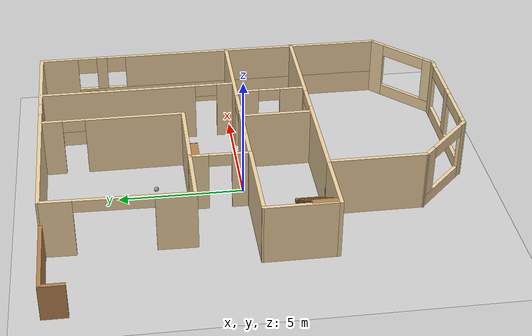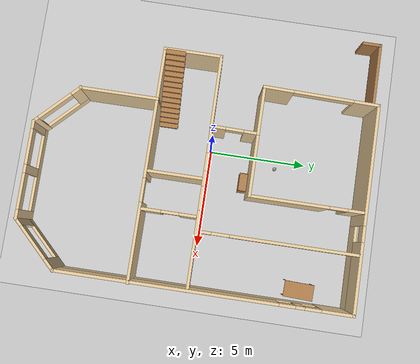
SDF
<sdf version="1.6">
 <world name="default">
  <model name="ground_plane">
   <static>1</static>
   <link name="link">
    <collision name="collision">
     <geometry><plane><normal>0 0 1</normal><size>100 100</size></plane></geometry>
     <surface>
      <contact><collide_bitmask>65535</collide_bitmask></contact>
      <friction><ode><mu>100</mu><mu2>50</mu2></ode></friction>
     </surface>
    </collision>
    <visual name="visual">
     <cast_shadows>0</cast_shadows>
     <geometry><plane><normal>0 0 1</normal><size>100 100</size></plane></geometry>
     <material>
      <script><uri>file://media/materials/scripts/gazebo.material</uri><name>Gazebo/Grey</name></script>
     </material>
    </visual>
   </link>
  </model>
  <model name="Building">
   <pose>0.288686 -0.504373 0 0 -0 0</pose>
   <link name="Stairs_2">
    <visual name="Stairs_2_Visual_0">
     <pose>-1.38684 -1.94916 0.083333 0 -0 -1.5708</pose>
     <geometry><box><size>1 0.233333 0.166667</size></box></geometry>
     <material>
      <script><uri>file://media/materials/scripts/gazebo.material</uri><name>Gazebo/Wood</name></script>
      <ambient>0.760784 0.662745 0.627451 1</ambient>
     </material>
     <meta><layer>0</layer></meta>
    </visual>
    <collision name="Stairs_2_Collision_0">
     <geometry><box><size>1 0.233333 0.166667</size></box></geometry>
     <pose>-1.38684 -1.94916 0.083333 0 -0 -1.5708</pose>
    </collision>
    <visual name="Stairs_2_Visual_1">
     <pose>-1.62017 -1.94916 0.25 0 -0 -1.5708</pose>
     <geometry><box><size>1 0.233333 0.166667</size></box></geometry>
     <material>
      <script><uri>file://media/materials/scripts/gazebo.material</uri><name>Gazebo/Wood</name></script>
      <ambient>0.760784 0.662745 0.627451 1</ambient>
     </material>
     <meta><layer>0</layer></meta>
    </visual>
    <collision name="Stairs_2_Collision_1">
     <geometry><box><size>1 0.233333 0.166667</size></box></geometry>
     <pose>-1.62017 -1.94916 0.25 0 -0 -1.5708</pose>
    </collision>
    <visual name="Stairs_2_Visual_2">
     <pose>-1.85351 -1.94916 0.416667 0 -0 -1.5708</pose>
     <geometry><box><size>1 0.233333 0.166667</size></box></geometry>
     <material>
      <script><uri>file://media/materials/scripts/gazebo.material</uri><name>Gazebo/Wood</name></script>
      <ambient>0.760784 0.662745 0.627451 1</ambient>
     </material>
     <meta><layer>0</layer></meta>
    </visual>
    <collision name="Stairs_2_Collision_2">
     <geometry><box><size>1 0.233333 0.166667</size></box></geometry>
     <pose>-1.85351 -1.94916 0.416667 0 -0 -1.5708</pose>
    </collision>
    <visual name="Stairs_2_Visual_3">
     <pose>-2.08684 -1.94916 0.583333 0 -0 -1.5708</pose>
     <geometry><box><size>1 0.233333 0.166667</size></box></geometry>
     <material>
      <script><uri>file://media/materials/scripts/gazebo.material</uri><name>Gazebo/Wood</name></script>
      <ambient>0.760784 0.662745 0.627451 1</ambient>
     </material>
     <meta><layer>0</layer></meta>
    </visual>
    <collision name="Stairs_2_Collision_3">
     <geometry><box><size>1 0.233333 0.166667</size></box></geometry>
     <pose>-2.08684 -1.94916 0.583333 0 -0 -1.5708</pose>
    </collision>
    <visual name="Stairs_2_Visual_4">
     <pose>-2.32017 -1.94916 0.75 0 -0 -1.5708</pose>
     <geometry><box><size>1 0.233333 0.166667</size></box></geometry>
     <material>
      <script><uri>file://media/materials/scripts/gazebo.material</uri><name>Gazebo/Wood</name></script>
      <ambient>0.760784 0.662745 0.627451 1</ambient>
     </material>
     <meta><layer>0</layer></meta>
    </visual>
    <collision name="Stairs_2_Collision_4">
     <geometry><box><size>1 0.233333 0.166667</size></box></geometry>
     <pose>-2.32017 -1.94916 0.75 0 -0 -1.5708</pose>
    </collision>
    <visual name="Stairs_2_Visual_5">
     <pose>-2.55351 -1.94916 0.916667 0 -0 -1.5708</pose>
     <geometry><box><size>1 0.233333 0.166667</size></box></geometry>
     <material>
      <script><uri>file://media/materials/scripts/gazebo.material</uri><name>Gazebo/Wood</name></script>
      <ambient>0.760784 0.662745 0.627451 1</ambient>
     </material>
     <meta><layer>0</layer></meta>
    </visual>
    <collision name="Stairs_2_Collision_5">
     <geometry><box><size>1 0.233333 0.166667</size></box></geometry>
     <pose>-2.55351 -1.94916 0.916667 0 -0 -1.5708</pose>
    </collision>
    <visual name="Stairs_2_Visual_6">
     <pose>-2.78684 -1.94916 1.08333 0 -0 -1.5708</pose>
     <geometry><box><size>1 0.233333 0.166667</size></box></geometry>
     <material>
      <script><uri>file://media/materials/scripts/gazebo.material</uri><name>Gazebo/Wood</name></script>
      <ambient>0.760784 0.662745 0.627451 1</ambient>
     </material>
     <meta><layer>0</layer></meta>
    </visual>
    <collision name="Stairs_2_Collision_6">
     <geometry><box><size>1 0.233333 0.166667</size></box></geometry>
     <pose>-2.78684 -1.94916 1.08333 0 -0 -1.5708</pose>
    </collision>
    <visual name="Stairs_2_Visual_7">
     <pose>-3.02017 -1.94916 1.25 0 -0 -1.5708</pose>
     <geometry><box><size>1 0.233333 0.166667</size></box></geometry>
     <material>
      <script><uri>file://media/materials/scripts/gazebo.material</uri><name>Gazebo/Wood</name></script>
      <ambient>0.760784 0.662745 0.627451 1</ambient>
     </material>
     <meta><layer>0</layer></meta>
    </visual>
    <collision name="Stairs_2_Collision_7">
     <geometry><box><size>1 0.233333 0.166667</size></box></geometry>
     <pose>-3.02017 -1.94916 1.25 0 -0 -1.5708</pose>
    </collision>
    <visual name="Stairs_2_Visual_8">
     <pose>-3.25351 -1.94916 1.41667 0 -0 -1.5708</pose>
     <geometry><box><size>1 0.233333 0.166667</size></box></geometry>
     <material>
      <script><uri>file://media/materials/scripts/gazebo.material</uri><name>Gazebo/Wood</name></script>
      <ambient>0.760784 0.662745 0.627451 1</ambient>
     </material>
     <meta><layer>0</layer></meta>
    </visual>
    <collision name="Stairs_2_Collision_8">
     <geometry><box><size>1 0.233333 0.166667</size></box></geometry>
     <pose>-3.25351 -1.94916 1.41667 0 -0 -1.5708</pose>
    </collision>
    <visual name="Stairs_2_Visual_9">
     <pose>-3.48684 -1.94916 1.58333 0 -0 -1.5708</pose>
     <geometry><box><size>1 0.233333 0.166667</size></box></geometry>
     <material>
      <script><uri>file://media/materials/scripts/gazebo.material</uri><name>Gazebo/Wood</name></script>
      <ambient>0.760784 0.662745 0.627451 1</ambient>
     </material>
     <meta><layer>0</layer></meta>
    </visual>
    <collision name="Stairs_2_Collision_9">
     <geometry><box><size>1 0.233333 0.166667</size></box></geometry>
     <pose>-3.48684 -1.94916 1.58333 0 -0 -1.5708</pose>
    </collision>
    <visual name="Stairs_2_Visual_10">
     <pose>-3.72017 -1.94916 1.75 0 -0 -1.5708</pose>
     <geometry><box><size>1 0.233333 0.166667</size></box></geometry>
     <material>
      <script><uri>file://media/materials/scripts/gazebo.material</uri><name>Gazebo/Wood</name></script>
      <ambient>0.760784 0.662745 0.627451 1</ambient>
     </material>
     <meta><layer>0</layer></meta>
    </visual>
    <collision name="Stairs_2_Collision_10">
     <geometry><box><size>1 0.233333 0.166667</size></box></geometry>
     <pose>-3.72017 -1.94916 1.75 0 -0 -1.5708</pose>
    </collision>
    <visual name="Stairs_2_Visual_11">
     <pose>-3.95351 -1.94916 1.91667 0 -0 -1.5708</pose>
     <geometry><box><size>1 0.233333 0.166667</size></box></geometry>
     <material>
      <script><uri>file://media/materials/scripts/gazebo.material</uri><name>Gazebo/Wood</name></script>
      <ambient>0.760784 0.662745 0.627451 1</ambient>
     </material>
     <meta><layer>0</layer></meta>
    </visual>
    <collision name="Stairs_2_Collision_11">
     <geometry><box><size>1 0.233333 0.166667</size></box></geometry>
     <pose>-3.95351 -1.94916 1.91667 0 -0 -1.5708</pose>
    </collision>
    <visual name="Stairs_2_Visual_12">
     <pose>-4.18684 -1.94916 2.08333 0 -0 -1.5708</pose>
     <geometry><box><size>1 0.233333 0.166667</size></box></geometry>
     <material>
      <script><uri>file://media/materials/scripts/gazebo.material</uri><name>Gazebo/Wood</name></script>
      <ambient>0.760784 0.662745 0.627451 1</ambient>
     </material>
     <meta><layer>0</layer></meta>
    </visual>
    <collision name="Stairs_2_Collision_12">
     <geometry><box><size>1 0.233333 0.166667</size></box></geometry>
     <pose>-4.18684 -1.94916 2.08333 0 -0 -1.5708</pose>
    </collision>
    <visual name="Stairs_2_Visual_13">
     <pose>-4.42017 -1.94916 2.25 0 -0 -1.5708</pose>
     <geometry><box><size>1 0.233333 0.166667</size></box></geometry>
     <material>
      <script><uri>file://media/materials/scripts/gazebo.material</uri><name>Gazebo/Wood</name></script>
      <ambient>0.760784 0.662745 0.627451 1</ambient>
     </material>
     <meta><layer>0</layer></meta>
    </visual>
    <collision name="Stairs_2_Collision_13">
     <geometry><box><size>1 0.233333 0.166667</size></box></geometry>
     <pose>-4.42017 -1.94916 2.25 0 -0 -1.5708</pose>
    </collision>
    <visual name="Stairs_2_Visual_14">
     <pose>-4.65351 -1.94916 2.41667 0 -0 -1.5708</pose>
     <geometry><box><size>1 0.233333 0.166667</size></box></geometry>
     <material>
      <script><uri>file://media/materials/scripts/gazebo.material</uri><name>Gazebo/Wood</name></script>
      <ambient>0.760784 0.662745 0.627451 1</ambient>
     </material>
     <meta><layer>0</layer></meta>
    </visual>
    <collision name="Stairs_2_Collision_14">
     <geometry><box><size>1 0.233333 0.166667</size></box></geometry>
     <pose>-4.65351 -1.94916 2.41667 0 -0 -1.5708</pose>
    </collision>
   </link>
   <link name="Wall_34">
    <pose>6.87523 1.11069 0 0 0 -1.5708</pose>
    <visual name="Wall_34_Visual_0">
     <pose>-6.55765 0 1.25 0 -0 0</pose>
     <geometry><box><size>1.6347 0.15 2.5</size></box></geometry>
     <material>
      <script><uri>file://media/materials/scripts/gazebo.material</uri><name>Gazebo/Grey</name></script>
      <ambient>0.921569 0.807843 0.615686 1</ambient>
     </material>
     <meta><layer>0</layer></meta>
    </visual>
    <collision name="Wall_34_Collision_0">
     <geometry><box><size>1.6347 0.15 2.5</size></box></geometry>
     <pose>-6.55765 0 1.25 0 -0 0</pose>
    </collision>
    <visual name="Wall_34_Visual_1">
     <pose>0.81735 0 0.5 0 -0 0</pose>
     <geometry><box><size>13.1153 0.15 1</size></box></geometry>
     <material>
      <script><uri>file://media/materials/scripts/gazebo.material</uri><name>Gazebo/Grey</name></script>
      <ambient>0.921569 0.807843 0.615686 1</ambient>
     </material>
     <meta><layer>0</layer></meta>
    </visual>
    <collision name="Wall_34_Collision_1">
     <geometry><box><size>13.1153 0.15 1</size></box></geometry>
     <pose>0.81735 0 0.5 0 -0 0</pose>
    </collision>
    <visual name="Wall_34_Visual_2">
     <pose>-4.71674 0 1.75 0 -0 0</pose>
     <geometry><box><size>0.447118 0.15 1.5</size></box></geometry>
     <material>
      <script><uri>file://media/materials/scripts/gazebo.material</uri><name>Gazebo/Grey</name></script>
      <ambient>0.921569 0.807843 0.615686 1</ambient>
     </material>
     <meta><layer>0</layer></meta>
    </visual>
    <collision name="Wall_34_Collision_2">
     <geometry><box><size>0.447118 0.15 1.5</size></box></geometry>
     <pose>-4.71674 0 1.75 0 -0 0</pose>
    </collision>
    <visual name="Wall_34_Visual_3">
     <pose>1.84091 0 1.75 0 -0 0</pose>
     <geometry><box><size>11.0682 0.15 1.5</size></box></geometry>
     <material>
      <script><uri>file://media/materials/scripts/gazebo.material</uri><name>Gazebo/Grey</name></script>
      <ambient>0.921569 0.807843 0.615686 1</ambient>
     </material>
     <meta><layer>0</layer></meta>
    </visual>
    <collision name="Wall_34_Collision_3">
     <geometry><box><size>11.0682 0.15 1.5</size></box></geometry>
     <pose>1.84091 0 1.75 0 -0 0</pose>
    </collision>
    <visual name="Wall_34_Visual_4">
     <pose>-5.3403 0 2.15 0 -0 0</pose>
     <geometry><box><size>0.8 0.15 0.7</size></box></geometry>
     <material>
      <script><uri>file://media/materials/scripts/gazebo.material</uri><name>Gazebo/Grey</name></script>
      <ambient>0.921569 0.807843 0.615686 1</ambient>
     </material>
     <meta><layer>0</layer></meta>
    </visual>
    <collision name="Wall_34_Collision_4">
     <geometry><box><size>0.8 0.15 0.7</size></box></geometry>
     <pose>-5.3403 0 2.15 0 -0 0</pose>
    </collision>
    <visual name="Wall_34_Visual_5">
     <pose>-4.09318 0 2.15 0 -0 0</pose>
     <geometry><box><size>0.8 0.15 0.7</size></box></geometry>
     <material>
      <script><uri>file://media/materials/scripts/gazebo.material</uri><name>Gazebo/Grey</name></script>
      <ambient>0.921569 0.807843 0.615686 1</ambient>
     </material>
     <meta><layer>0</layer></meta>
    </visual>
    <collision name="Wall_34_Collision_5">
     <geometry><box><size>0.8 0.15 0.7</size></box></geometry>
     <pose>-4.09318 0 2.15 0 -0 0</pose>
    </collision>
   </link>
   <link name="Wall_35">
    <pose>5.77921 -7.28533 0 0 0 -2.35619</pose>
    <visual name="Wall_35_Visual_0">
     <pose>-1.26324 0 1.25 0 -0 0</pose>
     <geometry><box><size>0.723512 0.15 2.5</size></box></geometry>
     <material>
      <script><uri>file://media/materials/scripts/gazebo.material</uri><name>Gazebo/Grey</name></script>
      <ambient>0.921569 0.807843 0.615686 1</ambient>
     </material>
     <meta><layer>0</layer></meta>
    </visual>
    <collision name="Wall_35_Collision_0">
     <geometry><box><size>0.723512 0.15 2.5</size></box></geometry>
     <pose>-1.26324 0 1.25 0 -0 0</pose>
    </collision>
    <visual name="Wall_35_Visual_1">
     <pose>0.361756 0 0.25 0 -0 0</pose>
     <geometry><box><size>2.52649 0.15 0.5</size></box></geometry>
     <material>
      <script><uri>file://media/materials/scripts/gazebo.material</uri><name>Gazebo/Grey</name></script>
      <ambient>0.921569 0.807843 0.615686 1</ambient>
     </material>
     <meta><layer>0</layer></meta>
    </visual>
    <collision name="Wall_35_Collision_1">
     <geometry><box><size>2.52649 0.15 0.5</size></box></geometry>
     <pose>0.361756 0 0.25 0 -0 0</pose>
    </collision>
    <visual name="Wall_35_Visual_2">
     <pose>1.36176 0 1.5 0 -0 0</pose>
     <geometry><box><size>0.526488 0.15 2</size></box></geometry>
     <material>
      <script><uri>file://media/materials/scripts/gazebo.material</uri><name>Gazebo/Grey</name></script>
      <ambient>0.921569 0.807843 0.615686 1</ambient>
     </material>
     <meta><layer>0</layer></meta>
    </visual>
    <collision name="Wall_35_Collision_2">
     <geometry><box><size>0.526488 0.15 2</size></box></geometry>
     <pose>1.36176 0 1.5 0 -0 0</pose>
    </collision>
    <visual name="Wall_35_Visual_3">
     <pose>0.098512 0 2.25 0 -0 0</pose>
     <geometry><box><size>2 0.15 0.5</size></box></geometry>
     <material>
      <script><uri>file://media/materials/scripts/gazebo.material</uri><name>Gazebo/Grey</name></script>
      <ambient>0.921569 0.807843 0.615686 1</ambient>
     </material>
     <meta><layer>0</layer></meta>
    </visual>
    <collision name="Wall_35_Collision_3">
     <geometry><box><size>2 0.15 0.5</size></box></geometry>
     <pose>0.098512 0 2.25 0 -0 0</pose>
    </collision>
   </link>
   <link name="Wall_36">
    <pose>2.2582 -8.38134 0 0 -0 3.14159</pose>
    <visual name="Wall_36_Visual_0">
     <pose>-2.23916 0 1.25 0 -0 0</pose>
     <geometry><box><size>0.521674 0.15 2.5</size></box></geometry>
     <material>
      <script><uri>file://media/materials/scripts/gazebo.material</uri><name>Gazebo/Grey</name></script>
      <ambient>0.921569 0.807843 0.615686 1</ambient>
     </material>
     <meta><layer>0</layer></meta>
    </visual>
    <collision name="Wall_36_Collision_0">
     <geometry><box><size>0.521674 0.15 2.5</size></box></geometry>
     <pose>-2.23916 0 1.25 0 -0 0</pose>
    </collision>
    <visual name="Wall_36_Visual_1">
     <pose>0.260837 0 0.25 0 -0 0</pose>
     <geometry><box><size>4.47833 0.15 0.5</size></box></geometry>
     <material>
      <script><uri>file://media/materials/scripts/gazebo.material</uri><name>Gazebo/Grey</name></script>
      <ambient>0.921569 0.807843 0.615686 1</ambient>
     </material>
     <meta><layer>0</layer></meta>
    </visual>
    <collision name="Wall_36_Collision_1">
     <geometry><box><size>4.47833 0.15 0.5</size></box></geometry>
     <pose>0.260837 0 0.25 0 -0 0</pose>
    </collision>
    <visual name="Wall_36_Visual_2">
     <pose>0.035742 0 1.5 0 -0 0</pose>
     <geometry><box><size>0.428135 0.15 2</size></box></geometry>
     <material>
      <script><uri>file://media/materials/scripts/gazebo.material</uri><name>Gazebo/Grey</name></script>
      <ambient>0.921569 0.807843 0.615686 1</ambient>
     </material>
     <meta><layer>0</layer></meta>
    </visual>
    <collision name="Wall_36_Collision_2">
     <geometry><box><size>0.428135 0.15 2</size></box></geometry>
     <pose>0.035742 0 1.5 0 -0 0</pose>
    </collision>
    <visual name="Wall_36_Visual_3">
     <pose>2.2749 0 1.5 0 -0 0</pose>
     <geometry><box><size>0.450191 0.15 2</size></box></geometry>
     <material>
      <script><uri>file://media/materials/scripts/gazebo.material</uri><name>Gazebo/Grey</name></script>
      <ambient>0.921569 0.807843 0.615686 1</ambient>
     </material>
     <meta><layer>0</layer></meta>
    </visual>
    <collision name="Wall_36_Collision_3">
     <geometry><box><size>0.450191 0.15 2</size></box></geometry>
     <pose>2.2749 0 1.5 0 -0 0</pose>
    </collision>
    <visual name="Wall_36_Visual_4">
     <pose>-1.07833 0 2.25 0 -0 0</pose>
     <geometry><box><size>1.8 0.15 0.5</size></box></geometry>
     <material>
      <script><uri>file://media/materials/scripts/gazebo.material</uri><name>Gazebo/Grey</name></script>
      <ambient>0.921569 0.807843 0.615686 1</ambient>
     </material>
     <meta><layer>0</layer></meta>
    </visual>
    <collision name="Wall_36_Collision_4">
     <geometry><box><size>1.8 0.15 0.5</size></box></geometry>
     <pose>-1.07833 0 2.25 0 -0 0</pose>
    </collision>
    <visual name="Wall_36_Visual_5">
     <pose>1.14981 0 2.25 0 -0 0</pose>
     <geometry><box><size>1.8 0.15 0.5</size></box></geometry>
     <material>
      <script><uri>file://media/materials/scripts/gazebo.material</uri><name>Gazebo/Grey</name></script>
      <ambient>0.921569 0.807843 0.615686 1</ambient>
     </material>
     <meta><layer>0</layer></meta>
    </visual>
    <collision name="Wall_36_Collision_5">
     <geometry><box><size>1.8 0.15 0.5</size></box></geometry>
     <pose>1.14981 0 2.25 0 -0 0</pose>
    </collision>
   </link>
   <link name="Wall_37">
    <pose>-1.17443 -7.37372 0 0 -0 2.35619</pose>
    <visual name="Wall_37_Visual_0">
     <pose>-1.31904 0 1.25 0 -0 0</pose>
     <geometry><box><size>0.361912 0.15 2.5</size></box></geometry>
     <material>
      <script><uri>file://media/materials/scripts/gazebo.material</uri><name>Gazebo/Grey</name></script>
      <ambient>0.921569 0.807843 0.615686 1</ambient>
     </material>
     <meta><layer>0</layer></meta>
    </visual>
    <collision name="Wall_37_Collision_0">
     <geometry><box><size>0.361912 0.15 2.5</size></box></geometry>
     <pose>-1.31904 0 1.25 0 -0 0</pose>
    </collision>
    <visual name="Wall_37_Visual_1">
     <pose>0.180956 0 0.25 0 -0 0</pose>
     <geometry><box><size>2.63809 0.15 0.5</size></box></geometry>
     <material>
      <script><uri>file://media/materials/scripts/gazebo.material</uri><name>Gazebo/Grey</name></script>
      <ambient>0.921569 0.807843 0.615686 1</ambient>
     </material>
     <meta><layer>0</layer></meta>
    </visual>
    <collision name="Wall_37_Collision_1">
     <geometry><box><size>2.63809 0.15 0.5</size></box></geometry>
     <pose>0.180956 0 0.25 0 -0 0</pose>
    </collision>
    <visual name="Wall_37_Visual_2">
     <pose>1.18096 0 1.5 0 -0 0</pose>
     <geometry><box><size>0.638088 0.15 2</size></box></geometry>
     <material>
      <script><uri>file://media/materials/scripts/gazebo.material</uri><name>Gazebo/Grey</name></script>
      <ambient>0.921569 0.807843 0.615686 1</ambient>
     </material>
     <meta><layer>0</layer></meta>
    </visual>
    <collision name="Wall_37_Collision_2">
     <geometry><box><size>0.638088 0.15 2</size></box></geometry>
     <pose>1.18096 0 1.5 0 -0 0</pose>
    </collision>
    <visual name="Wall_37_Visual_3">
     <pose>-0.138088 0 2.25 0 -0 0</pose>
     <geometry><box><size>2 0.15 0.5</size></box></geometry>
     <material>
      <script><uri>file://media/materials/scripts/gazebo.material</uri><name>Gazebo/Grey</name></script>
      <ambient>0.921569 0.807843 0.615686 1</ambient>
     </material>
     <meta><layer>0</layer></meta>
    </visual>
    <collision name="Wall_37_Collision_3">
     <geometry><box><size>2 0.15 0.5</size></box></geometry>
     <pose>-0.138088 0 2.25 0 -0 0</pose>
    </collision>
   </link>
   <link name="Wall_38">
    <collision name="Wall_38_Collision">
     <geometry><box><size>4 0.15 2.5</size></box></geometry>
     <pose>0 0 1.25 0 -0 0</pose>
    </collision>
    <visual name="Wall_38_Visual">
     <pose>0 0 1.25 0 -0 0</pose>
     <geometry><box><size>4 0.15 2.5</size></box></geometry>
     <material>
      <script><uri>file://media/materials/scripts/gazebo.material</uri><name>Gazebo/Grey</name></script>
      <ambient>0.921569 0.807843 0.615686 1</ambient>
     </material>
     <meta><layer>0</layer></meta>
    </visual>
    <pose>-2.18206 -4.44109 0 0 -0 1.5708</pose>
   </link>
   <link name="Wall_39">
    <collision name="Wall_39_Collision">
     <geometry><box><size>2.75 0.15 2.5</size></box></geometry>
     <pose>0 0 1.25 0 -0 0</pose>
    </collision>
    <visual name="Wall_39_Visual">
     <pose>0 0 1.25 0 -0 0</pose>
     <geometry><box><size>2.75 0.15 2.5</size></box></geometry>
     <material>
      <script><uri>file://media/materials/scripts/gazebo.material</uri><name>Gazebo/Grey</name></script>
      <ambient>0.921569 0.807843 0.615686 1</ambient>
     </material>
     <meta><layer>0</layer></meta>
    </visual>
    <pose>-3.48206 -2.51609 0 0 -0 3.14159</pose>
   </link>
   <link name="Wall_40">
    <collision name="Wall_40_Collision">
     <geometry><box><size>3 0.15 2.5</size></box></geometry>
     <pose>0 0 1.25 0 -0 0</pose>
    </collision>
    <visual name="Wall_40_Visual">
     <pose>0 0 1.25 0 -0 0</pose>
     <geometry><box><size>3 0.15 2.5</size></box></geometry>
     <material>
      <script><uri>file://media/materials/scripts/gazebo.material</uri><name>Gazebo/Grey</name></script>
      <ambient>0.921569 0.807843 0.615686 1</ambient>
     </material>
     <meta><layer>0</layer></meta>
    </visual>
    <pose>-4.78206 -1.09109 0 0 -0 1.5708</pose>
   </link>
   <link name="Wall_41">
    <collision name="Wall_41_Collision">
     <geometry><box><size>3.71526 0.15 2.5</size></box></geometry>
     <pose>0 0 1.25 0 -0 0</pose>
    </collision>
    <visual name="Wall_41_Visual">
     <pose>0 0 1.25 0 -0 0</pose>
     <geometry><box><size>3.71526 0.15 2.5</size></box></geometry>
     <material>
      <script><uri>file://media/materials/scripts/gazebo.material</uri><name>Gazebo/Grey</name></script>
      <ambient>0.921569 0.807843 0.615686 1</ambient>
     </material>
     <meta><layer>0</layer></meta>
    </visual>
    <pose>-2.99945 0.342607 0 0 -0 0.004878</pose>
   </link>
   <link name="Wall_42">
    <pose>-1.19945 1.51761 0 0 -0 1.55589</pose>
    <visual name="Wall_42_Visual_0">
     <pose>-0.846422 0 1.25 0 -0 0</pose>
     <geometry><box><size>0.790024 0.15 2.5</size></box></geometry>
     <material>
      <script><uri>file://media/materials/scripts/gazebo.material</uri><name>Gazebo/Grey</name></script>
      <ambient>0.921569 0.807843 0.615686 1</ambient>
     </material>
     <meta><layer>0</layer></meta>
    </visual>
    <collision name="Wall_42_Collision_0">
     <geometry><box><size>0.790024 0.15 2.5</size></box></geometry>
     <pose>-0.846422 0 1.25 0 -0 0</pose>
    </collision>
    <visual name="Wall_42_Visual_1">
     <pose>0.845012 0 1.25 0 -0 0</pose>
     <geometry><box><size>0.792844 0.15 2.5</size></box></geometry>
     <material>
      <script><uri>file://media/materials/scripts/gazebo.material</uri><name>Gazebo/Grey</name></script>
      <ambient>0.921569 0.807843 0.615686 1</ambient>
     </material>
     <meta><layer>0</layer></meta>
    </visual>
    <collision name="Wall_42_Collision_1">
     <geometry><box><size>0.792844 0.15 2.5</size></box></geometry>
     <pose>0.845012 0 1.25 0 -0 0</pose>
    </collision>
    <visual name="Wall_42_Visual_2">
     <pose>-0.00141 0 2.25 0 -0 0</pose>
     <geometry><box><size>0.9 0.15 0.5</size></box></geometry>
     <material>
      <script><uri>file://media/materials/scripts/gazebo.material</uri><name>Gazebo/Grey</name></script>
      <ambient>0.921569 0.807843 0.615686 1</ambient>
     </material>
     <meta><layer>0</layer></meta>
    </visual>
    <collision name="Wall_42_Collision_2">
     <geometry><box><size>0.9 0.15 0.5</size></box></geometry>
     <pose>-0.00141 0 2.25 0 -0 0</pose>
    </collision>
   </link>
   <link name="Wall_43">
    <collision name="Wall_43_Collision">
     <geometry><box><size>2.48416 0.15 2.5</size></box></geometry>
     <pose>0 0 1.25 0 -0 0</pose>
    </collision>
    <visual name="Wall_43_Visual">
     <pose>0 0 1.25 0 -0 0</pose>
     <geometry><box><size>2.48416 0.15 2.5</size></box></geometry>
     <material>
      <script><uri>file://media/materials/scripts/gazebo.material</uri><name>Gazebo/Grey</name></script>
      <ambient>0.921569 0.807843 0.615686 1</ambient>
     </material>
     <meta><layer>0</layer></meta>
    </visual>
    <pose>-2.34914 2.68391 0 0 -0 3.14159</pose>
   </link>
   <link name="Wall_44">
    <pose>-3.51813 5.54739 0 0 -0 1.5501</pose>
    <visual name="Wall_44_Visual_0">
     <pose>-2.15687 0 1.25 0 -0 0</pose>
     <geometry><box><size>1.56445 0.15 2.5</size></box></geometry>
     <material>
      <script><uri>file://media/materials/scripts/gazebo.material</uri><name>Gazebo/Grey</name></script>
      <ambient>0.921569 0.807843 0.615686 1</ambient>
     </material>
     <meta><layer>0</layer></meta>
    </visual>
    <collision name="Wall_44_Collision_0">
     <geometry><box><size>1.56445 0.15 2.5</size></box></geometry>
     <pose>-2.15687 0 1.25 0 -0 0</pose>
    </collision>
    <visual name="Wall_44_Visual_1">
     <pose>2.28222 0 1.25 0 -0 0</pose>
     <geometry><box><size>1.31374 0.15 2.5</size></box></geometry>
     <material>
      <script><uri>file://media/materials/scripts/gazebo.material</uri><name>Gazebo/Grey</name></script>
      <ambient>0.921569 0.807843 0.615686 1</ambient>
     </material>
     <meta><layer>0</layer></meta>
    </visual>
    <collision name="Wall_44_Collision_1">
     <geometry><box><size>1.31374 0.15 2.5</size></box></geometry>
     <pose>2.28222 0 1.25 0 -0 0</pose>
    </collision>
    <visual name="Wall_44_Visual_2">
     <pose>0.125356 0 2.25 0 -0 0</pose>
     <geometry><box><size>3 0.15 0.5</size></box></geometry>
     <material>
      <script><uri>file://media/materials/scripts/gazebo.material</uri><name>Gazebo/Grey</name></script>
      <ambient>0.921569 0.807843 0.615686 1</ambient>
     </material>
     <meta><layer>0</layer></meta>
    </visual>
    <collision name="Wall_44_Collision_2">
     <geometry><box><size>3 0.15 0.5</size></box></geometry>
     <pose>0.125356 0 2.25 0 -0 0</pose>
    </collision>
   </link>
   <link name="Wall_45">
    <pose>1.70819 8.41078 0 0 0 -1.8e-05</pose>
    <visual name="Wall_45_Visual_0">
     <pose>-2.20454 0 1.25 0 -0 0</pose>
     <geometry><box><size>6.07508 0.15 2.5</size></box></geometry>
     <material>
      <script><uri>file://media/materials/scripts/gazebo.material</uri><name>Gazebo/Grey</name></script>
      <ambient>0.921569 0.807843 0.615686 1</ambient>
     </material>
     <meta><layer>0</layer></meta>
    </visual>
    <collision name="Wall_45_Collision_0">
     <geometry><box><size>6.07508 0.15 2.5</size></box></geometry>
     <pose>-2.20454 0 1.25 0 -0 0</pose>
    </collision>
    <visual name="Wall_45_Visual_1">
     <pose>3.03754 0 0.5 0 -0 0</pose>
     <geometry><box><size>4.40909 0.15 1</size></box></geometry>
     <material>
      <script><uri>file://media/materials/scripts/gazebo.material</uri><name>Gazebo/Grey</name></script>
      <ambient>0.921569 0.807843 0.615686 1</ambient>
     </material>
     <meta><layer>0</layer></meta>
    </visual>
    <collision name="Wall_45_Collision_1">
     <geometry><box><size>4.40909 0.15 1</size></box></geometry>
     <pose>3.03754 0 0.5 0 -0 0</pose>
    </collision>
    <visual name="Wall_45_Visual_2">
     <pose>3.43754 0 1.75 0 -0 0</pose>
     <geometry><box><size>3.60909 0.15 1.5</size></box></geometry>
     <material>
      <script><uri>file://media/materials/scripts/gazebo.material</uri><name>Gazebo/Grey</name></script>
      <ambient>0.921569 0.807843 0.615686 1</ambient>
     </material>
     <meta><layer>0</layer></meta>
    </visual>
    <collision name="Wall_45_Collision_2">
     <geometry><box><size>3.60909 0.15 1.5</size></box></geometry>
     <pose>3.43754 0 1.75 0 -0 0</pose>
    </collision>
    <visual name="Wall_45_Visual_3">
     <pose>1.233 0 2.15 0 -0 0</pose>
     <geometry><box><size>0.8 0.15 0.7</size></box></geometry>
     <material>
      <script><uri>file://media/materials/scripts/gazebo.material</uri><name>Gazebo/Grey</name></script>
      <ambient>0.921569 0.807843 0.615686 1</ambient>
     </material>
     <meta><layer>0</layer></meta>
    </visual>
    <collision name="Wall_45_Collision_3">
     <geometry><box><size>0.8 0.15 0.7</size></box></geometry>
     <pose>1.233 0 2.15 0 -0 0</pose>
    </collision>
   </link>
   <link name="Wall_47">
    <pose>2.36794 -2.51609 0 0 -0 0</pose>
    <visual name="Wall_47_Visual_0">
     <pose>-2.59572 0 1.25 0 -0 0</pose>
     <geometry><box><size>4.05855 0.15 2.5</size></box></geometry>
     <material>
      <script><uri>file://media/materials/scripts/gazebo.material</uri><name>Gazebo/Grey</name></script>
      <ambient>0.921569 0.807843 0.615686 1</ambient>
     </material>
     <meta><layer>0</layer></meta>
    </visual>
    <collision name="Wall_47_Collision_0">
     <geometry><box><size>4.05855 0.15 2.5</size></box></geometry>
     <pose>-2.59572 0 1.25 0 -0 0</pose>
    </collision>
    <visual name="Wall_47_Visual_1">
     <pose>2.62928 0 1.25 0 -0 0</pose>
     <geometry><box><size>3.99145 0.15 2.5</size></box></geometry>
     <material>
      <script><uri>file://media/materials/scripts/gazebo.material</uri><name>Gazebo/Grey</name></script>
      <ambient>0.921569 0.807843 0.615686 1</ambient>
     </material>
     <meta><layer>0</layer></meta>
    </visual>
    <collision name="Wall_47_Collision_1">
     <geometry><box><size>3.99145 0.15 2.5</size></box></geometry>
     <pose>2.62928 0 1.25 0 -0 0</pose>
    </collision>
    <visual name="Wall_47_Visual_2">
     <pose>0.033554 0 2.25 0 -0 0</pose>
     <geometry><box><size>1.2 0.15 0.5</size></box></geometry>
     <material>
      <script><uri>file://media/materials/scripts/gazebo.material</uri><name>Gazebo/Grey</name></script>
      <ambient>0.921569 0.807843 0.615686 1</ambient>
     </material>
     <meta><layer>0</layer></meta>
    </visual>
    <collision name="Wall_47_Collision_2">
     <geometry><box><size>1.2 0.15 0.5</size></box></geometry>
     <pose>0.033554 0 2.25 0 -0 0</pose>
    </collision>
   </link>
   <link name="Wall_49">
    <pose>2.83316 0.368694 0 0 -0 0</pose>
    <visual name="Wall_49_Visual_0">
     <pose>-3.41637 0 1.25 0 -0 0</pose>
     <geometry><box><size>1.41725 0.15 2.5</size></box></geometry>
     <material>
      <script><uri>file://media/materials/scripts/gazebo.material</uri><name>Gazebo/Grey</name></script>
      <ambient>0.921569 0.807843 0.615686 1</ambient>
     </material>
     <meta><layer>0</layer></meta>
    </visual>
    <collision name="Wall_49_Collision_0">
     <geometry><box><size>1.41725 0.15 2.5</size></box></geometry>
     <pose>-3.41637 0 1.25 0 -0 0</pose>
    </collision>
    <visual name="Wall_49_Visual_1">
     <pose>-1.4284 0 1.25 0 -0 0</pose>
     <geometry><box><size>0.758696 0.15 2.5</size></box></geometry>
     <material>
      <script><uri>file://media/materials/scripts/gazebo.material</uri><name>Gazebo/Grey</name></script>
      <ambient>0.921569 0.807843 0.615686 1</ambient>
     </material>
     <meta><layer>0</layer></meta>
    </visual>
    <collision name="Wall_49_Collision_1">
     <geometry><box><size>0.758696 0.15 2.5</size></box></geometry>
     <pose>-1.4284 0 1.25 0 -0 0</pose>
    </collision>
    <visual name="Wall_49_Visual_2">
     <pose>2.13797 0 1.25 0 -0 0</pose>
     <geometry><box><size>3.97405 0.15 2.5</size></box></geometry>
     <material>
      <script><uri>file://media/materials/scripts/gazebo.material</uri><name>Gazebo/Grey</name></script>
      <ambient>0.921569 0.807843 0.615686 1</ambient>
     </material>
     <meta><layer>0</layer></meta>
    </visual>
    <collision name="Wall_49_Collision_2">
     <geometry><box><size>3.97405 0.15 2.5</size></box></geometry>
     <pose>2.13797 0 1.25 0 -0 0</pose>
    </collision>
    <visual name="Wall_49_Visual_3">
     <pose>-2.25775 0 2.25 0 -0 0</pose>
     <geometry><box><size>0.9 0.15 0.5</size></box></geometry>
     <material>
      <script><uri>file://media/materials/scripts/gazebo.material</uri><name>Gazebo/Grey</name></script>
      <ambient>0.921569 0.807843 0.615686 1</ambient>
     </material>
     <meta><layer>0</layer></meta>
    </visual>
    <collision name="Wall_49_Collision_3">
     <geometry><box><size>0.9 0.15 0.5</size></box></geometry>
     <pose>-2.25775 0 2.25 0 -0 0</pose>
    </collision>
    <visual name="Wall_49_Visual_4">
     <pose>-0.449054 0 2.25 0 -0 0</pose>
     <geometry><box><size>1.2 0.15 0.5</size></box></geometry>
     <material>
      <script><uri>file://media/materials/scripts/gazebo.material</uri><name>Gazebo/Grey</name></script>
      <ambient>0.921569 0.807843 0.615686 1</ambient>
     </material>
     <meta><layer>0</layer></meta>
    </visual>
    <collision name="Wall_49_Collision_4">
     <geometry><box><size>1.2 0.15 0.5</size></box></geometry>
     <pose>-0.449054 0 2.25 0 -0 0</pose>
    </collision>
   </link>
   <link name="Wall_53">
    <pose>3.31095 -1.0887 0 0 -0 1.5708</pose>
    <visual name="Wall_53_Visual_0">
     <pose>-0.882049 0 1.25 0 -0 0</pose>
     <geometry><box><size>0.985902 0.15 2.5</size></box></geometry>
     <material>
      <script><uri>file://media/materials/scripts/gazebo.material</uri><name>Gazebo/Grey</name></script>
      <ambient>0.921569 0.807843 0.615686 1</ambient>
     </material>
     <meta><layer>0</layer></meta>
    </visual>
    <collision name="Wall_53_Collision_0">
     <geometry><box><size>0.985902 0.15 2.5</size></box></geometry>
     <pose>-0.882049 0 1.25 0 -0 0</pose>
    </collision>
    <visual name="Wall_53_Visual_1">
     <pose>0.942951 0 1.25 0 -0 0</pose>
     <geometry><box><size>0.864098 0.15 2.5</size></box></geometry>
     <material>
      <script><uri>file://media/materials/scripts/gazebo.material</uri><name>Gazebo/Grey</name></script>
      <ambient>0.921569 0.807843 0.615686 1</ambient>
     </material>
     <meta><layer>0</layer></meta>
    </visual>
    <collision name="Wall_53_Collision_1">
     <geometry><box><size>0.864098 0.15 2.5</size></box></geometry>
     <pose>0.942951 0 1.25 0 -0 0</pose>
    </collision>
    <visual name="Wall_53_Visual_2">
     <pose>0.060902 0 2.25 0 -0 0</pose>
     <geometry><box><size>0.9 0.15 0.5</size></box></geometry>
     <material>
      <script><uri>file://media/materials/scripts/gazebo.material</uri><name>Gazebo/Grey</name></script>
      <ambient>0.921569 0.807843 0.615686 1</ambient>
     </material>
     <meta><layer>0</layer></meta>
    </visual>
    <collision name="Wall_53_Collision_2">
     <geometry><box><size>0.9 0.15 0.5</size></box></geometry>
     <pose>0.060902 0 2.25 0 -0 0</pose>
    </collision>
   </link>
   <link name="Wall_55">
    <collision name="Wall_55_Collision">
     <geometry><box><size>2.75 0.15 2.5</size></box></geometry>
     <pose>0 0 1.25 0 -0 0</pose>
    </collision>
    <visual name="Wall_55_Visual">
     <pose>0 0 1.25 0 -0 0</pose>
     <geometry><box><size>2.75 0.15 2.5</size></box></geometry>
     <material>
      <script><uri>file://media/materials/scripts/gazebo.material</uri><name>Gazebo/Grey</name></script>
      <ambient>0.921569 0.807843 0.615686 1</ambient>
     </material>
     <meta><layer>0</layer></meta>
    </visual>
    <pose>1.43017 -1.07289 0 0 -0 1.5708</pose>
   </link>
   <link name="Wall_57">
    <pose>3.99974 4.4252 0 0 0 -1.5708</pose>
    <visual name="Wall_57_Visual_0">
     <pose>-0.789286 0 1.25 0 -0 0</pose>
     <geometry><box><size>6.42143 0.15 2.5</size></box></geometry>
     <material>
      <script><uri>file://media/materials/scripts/gazebo.material</uri><name>Gazebo/Grey</name></script>
      <ambient>0.921569 0.807843 0.615686 1</ambient>
     </material>
     <meta><layer>0</layer></meta>
    </visual>
    <collision name="Wall_57_Collision_0">
     <geometry><box><size>6.42143 0.15 2.5</size></box></geometry>
     <pose>-0.789286 0 1.25 0 -0 0</pose>
    </collision>
    <visual name="Wall_57_Visual_1">
     <pose>3.66071 0 1.25 0 -0 0</pose>
     <geometry><box><size>0.678572 0.15 2.5</size></box></geometry>
     <material>
      <script><uri>file://media/materials/scripts/gazebo.material</uri><name>Gazebo/Grey</name></script>
      <ambient>0.921569 0.807843 0.615686 1</ambient>
     </material>
     <meta><layer>0</layer></meta>
    </visual>
    <collision name="Wall_57_Collision_1">
     <geometry><box><size>0.678572 0.15 2.5</size></box></geometry>
     <pose>3.66071 0 1.25 0 -0 0</pose>
    </collision>
    <visual name="Wall_57_Visual_2">
     <pose>2.87143 0 2.25 0 -0 0</pose>
     <geometry><box><size>0.9 0.15 0.5</size></box></geometry>
     <material>
      <script><uri>file://media/materials/scripts/gazebo.material</uri><name>Gazebo/Grey</name></script>
      <ambient>0.921569 0.807843 0.615686 1</ambient>
     </material>
     <meta><layer>0</layer></meta>
    </visual>
    <collision name="Wall_57_Collision_2">
     <geometry><box><size>0.9 0.15 0.5</size></box></geometry>
     <pose>2.87143 0 2.25 0 -0 0</pose>
    </collision>
   </link>
   <link name="Wall_59">
    <collision name="Wall_59_Collision">
     <geometry><box><size>3.25 0.15 2.5</size></box></geometry>
     <pose>0 0 1.25 0 -0 0</pose>
    </collision>
    <visual name="Wall_59_Visual">
     <pose>0 0 1.25 0 -0 0</pose>
     <geometry><box><size>3.25 0.15 2.5</size></box></geometry>
     <material>
      <script><uri>file://media/materials/scripts/gazebo.material</uri><name>Gazebo/Grey</name></script>
      <ambient>0.921569 0.807843 0.615686 1</ambient>
     </material>
     <meta><layer>0</layer></meta>
    </visual>
    <pose>0.367941 2.68391 0 0 -0 0</pose>
   </link>
   <link name="Wall_60">
    <pose>1.91794 5.48391 0 0 -0 1.5708</pose>
    <visual name="Wall_60_Visual_0">
     <pose>-0.867509 0 1.25 0 -0 0</pose>
     <geometry><box><size>4.01498 0.15 2.5</size></box></geometry>
     <material>
      <script><uri>file://media/materials/scripts/gazebo.material</uri><name>Gazebo/Grey</name></script>
      <ambient>0.921569 0.807843 0.615686 1</ambient>
     </material>
     <meta><layer>0</layer></meta>
    </visual>
    <collision name="Wall_60_Collision_0">
     <geometry><box><size>4.01498 0.15 2.5</size></box></geometry>
     <pose>-0.867509 0 1.25 0 -0 0</pose>
    </collision>
    <visual name="Wall_60_Visual_1">
     <pose>2.45749 0 1.25 0 -0 0</pose>
     <geometry><box><size>0.835018 0.15 2.5</size></box></geometry>
     <material>
      <script><uri>file://media/materials/scripts/gazebo.material</uri><name>Gazebo/Grey</name></script>
      <ambient>0.921569 0.807843 0.615686 1</ambient>
     </material>
     <meta><layer>0</layer></meta>
    </visual>
    <collision name="Wall_60_Collision_1">
     <geometry><box><size>0.835018 0.15 2.5</size></box></geometry>
     <pose>2.45749 0 1.25 0 -0 0</pose>
    </collision>
    <visual name="Wall_60_Visual_2">
     <pose>1.58998 0 2.25 0 -0 0</pose>
     <geometry><box><size>0.9 0.15 0.5</size></box></geometry>
     <material>
      <script><uri>file://media/materials/scripts/gazebo.material</uri><name>Gazebo/Grey</name></script>
      <ambient>0.921569 0.807843 0.615686 1</ambient>
     </material>
     <meta><layer>0</layer></meta>
    </visual>
    <collision name="Wall_60_Collision_2">
     <geometry><box><size>0.9 0.15 0.5</size></box></geometry>
     <pose>1.58998 0 2.25 0 -0 0</pose>
    </collision>
   </link>
   <link name="Wall_62">
    <collision name="Wall_62_Collision">
     <geometry><box><size>3.57411 0.15 1.5</size></box></geometry>
     <pose>0 0 0.75 0 -0 0</pose>
    </collision>
    <visual name="Wall_62_Visual">
     <pose>0 0 0.75 0 -0 0</pose>
     <geometry><box><size>3.57411 0.15 1.5</size></box></geometry>
     <material>
      <script><uri>file://media/materials/scripts/gazebo.material</uri><name>Gazebo/Wood</name></script>
      <ambient>1 1 1 1</ambient>
     </material>
     <meta><layer>0</layer></meta>
    </visual>
    <pose>-5.17091 8.41087 0 0 -0 3.14159</pose>
   </link>
   <link name="Wall_63">
    <collision name="Wall_63_Collision">
     <geometry><box><size>1 0.15 1.5</size></box></geometry>
     <pose>0 0 0.75 0 -0 0</pose>
    </collision>
    <visual name="Wall_63_Visual">
     <pose>0 0 0.75 0 -0 0</pose>
     <geometry><box><size>1 0.15 1.5</size></box></geometry>
     <material>
      <script><uri>file://media/materials/scripts/gazebo.material</uri><name>Gazebo/Wood</name></script>
      <ambient>1 1 1 1</ambient>
     </material>
     <meta><layer>0</layer></meta>
    </visual>
    <pose>-6.91794 7.98587 0 0 0 -1.5708</pose>
   </link>
   <static>1</static>
  </model>
  <model name="bookshelf_clone">
   <static>1</static>
   <link name="link">
    <inertial><mass>1</mass></inertial>
    <collision name="back">
     <pose>0 0.005 0.6 0 -0 0</pose>
     <geometry><box><size>0.9 0.01 1.2</size></box></geometry>
    </collision>
    <visual name="visual1">
     <pose>0 0.005 0.6 0 -0 0</pose>
     <geometry><box><size>0.9 0.01 1.2</size></box></geometry>
     <material>
      <script><uri>file://media/materials/scripts/gazebo.material</uri><name>Gazebo/Wood</name></script>
     </material>
    </visual>
    <collision name="left_side">
     <pose>0.45 -0.195 0.6 0 -0 0</pose>
     <geometry><box><size>0.02 0.4 1.2</size></box></geometry>
    </collision>
    <visual name="visual2">
     <pose>0.45 -0.195 0.6 0 -0 0</pose>
     <geometry><box><size>0.02 0.4 1.2</size></box></geometry>
     <material>
      <script><uri>file://media/materials/scripts/gazebo.material</uri><name>Gazebo/Wood</name></script>
     </material>
    </visual>
    <collision name="right_side">
     <pose>-0.45 -0.195 0.6 0 -0 0</pose>
     <geometry><box><size>0.02 0.4 1.2</size></box></geometry>
    </collision>
    <visual name="visual3">
     <pose>-0.45 -0.195 0.6 0 -0 0</pose>
     <geometry><box><size>0.02 0.4 1.2</size></box></geometry>
     <material>
      <script><uri>file://media/materials/scripts/gazebo.material</uri><name>Gazebo/Wood</name></script>
     </material>
    </visual>
    <collision name="bottom">
     <pose>0 -0.195 0.03 0 -0 0</pose>
     <geometry><box><size>0.88 0.4 0.06</size></box></geometry>
    </collision>
    <visual name="visual4">
     <pose>0 -0.195 0.03 0 -0 0</pose>
     <geometry><box><size>0.88 0.4 0.06</size></box></geometry>
     <material>
      <script><uri>file://media/materials/scripts/gazebo.material</uri><name>Gazebo/Wood</name></script>
     </material>
    </visual>
    <collision name="top">
     <pose>0 -0.195 1.19 0 -0 0</pose>
     <geometry><box><size>0.88 0.4 0.02</size></box></geometry>
    </collision>
    <visual name="visual5">
     <pose>0 -0.195 1.19 0 -0 0</pose>
     <geometry><box><size>0.88 0.4 0.02</size></box></geometry>
     <material>
      <script><uri>file://media/materials/scripts/gazebo.material</uri><name>Gazebo/Wood</name></script>
     </material>
    </visual>
    <collision name="low_shelf">
     <pose>0 -0.195 0.43 0 -0 0</pose>
     <geometry><box><size>0.88 0.4 0.02</size></box></geometry>
    </collision>
    <visual name="visual6">
     <pose>0 -0.195 0.43 0 -0 0</pose>
     <geometry><box><size>0.88 0.4 0.02</size></box></geometry>
     <material>
      <script><uri>file://media/materials/scripts/gazebo.material</uri><name>Gazebo/Wood</name></script>
     </material>
    </visual>
    <collision name="high_shelf">
     <pose>0 -0.195 0.8 0 -0 0</pose>
     <geometry><box><size>0.88 0.4 0.02</size></box></geometry>
    </collision>
    <visual name="visual7">
     <pose>0 -0.195 0.8 0 -0 0</pose>
     <geometry><box><size>0.88 0.4 0.02</size></box></geometry>
     <material>
      <script><uri>file://media/materials/scripts/gazebo.material</uri><name>Gazebo/Wood</name></script>
     </material>
    </visual>
   </link>
   <pose>1.46114 2.04556 0 0 -0 0</pose>
  </model>
  <model name="table_clone_1_clone">
   <static>1</static>
   <link name="link">
    <collision name="surface">
     <pose>0 0 1 0 -0 0</pose>
     <geometry><box><size>1.5 0.8 0.03</size></box></geometry>
     <surface><friction><ode><mu>0.6</mu><mu2>0.6</mu2></ode></friction></surface>
    </collision>
    <visual name="visual1">
     <pose>0 0 1 0 -0 0</pose>
     <geometry><box><size>1.5 0.8 0.03</size></box></geometry>
     <material>
      <script><uri>file://media/materials/scripts/gazebo.material</uri><name>Gazebo/Wood</name></script>
     </material>
    </visual>
    <collision name="front_left_leg">
     <pose>0.68 0.38 0.5 0 -0 0</pose>
     <geometry><cylinder><radius>0.02</radius><length>1</length></cylinder></geometry>
    </collision>
    <visual name="front_left_leg">
     <pose>0.68 0.38 0.5 0 -0 0</pose>
     <geometry><cylinder><radius>0.02</radius><length>1</length></cylinder></geometry>
     <material>
      <script><uri>file://media/materials/scripts/gazebo.material</uri><name>Gazebo/Grey</name></script>
     </material>
    </visual>
    <collision name="front_right_leg">
     <pose>0.68 -0.38 0.5 0 -0 0</pose>
     <geometry><cylinder><radius>0.02</radius><length>1</length></cylinder></geometry>
    </collision>
    <visual name="front_right_leg">
     <pose>0.68 -0.38 0.5 0 -0 0</pose>
     <geometry><cylinder><radius>0.02</radius><length>1</length></cylinder></geometry>
     <material>
      <script><uri>file://media/materials/scripts/gazebo.material</uri><name>Gazebo/Grey</name></script>
     </material>
    </visual>
    <collision name="back_right_leg">
     <pose>-0.68 -0.38 0.5 0 -0 0</pose>
     <geometry><cylinder><radius>0.02</radius><length>1</length></cylinder></geometry>
    </collision>
    <visual name="back_right_leg">
     <pose>-0.68 -0.38 0.5 0 -0 0</pose>
     <geometry><cylinder><radius>0.02</radius><length>1</length></cylinder></geometry>
     <material>
      <script><uri>file://media/materials/scripts/gazebo.material</uri><name>Gazebo/Grey</name></script>
     </material>
    </visual>
    <collision name="back_left_leg">
     <pose>-0.68 0.38 0.5 0 -0 0</pose>
     <geometry><cylinder><radius>0.02</radius><length>1</length></cylinder></geometry>
    </collision>
    <visual name="back_left_leg">
     <pose>-0.68 0.38 0.5 0 -0 0</pose>
     <geometry><cylinder><radius>0.02</radius><length>1</length></cylinder></geometry>
     <material>
      <script><uri>file://media/materials/scripts/gazebo.material</uri><name>Gazebo/Grey</name></script>
     </material>
    </visual>
   </link>
   <pose>6.46772 5.40796 0 0 0 -1.60604</pose>
  </model>
  <model name="my_ball">
   <link name="link_0">
    <inertial>
     <mass>1</mass>
     <inertia><ixx>0.1</ixx><ixy>0</ixy><ixz>0</ixz><iyy>0.1</iyy><iyz>0</iyz><izz>0.1</izz></inertia>
    </inertial>
    <visual name="visual">
     <geometry><sphere><radius>0.1</radius></sphere></geometry>
     <material>
      <lighting>1</lighting>
      <script><uri>file://media/materials/scripts/gazebo.material</uri><name>Gazebo/Grey</name></script>
      <shader type="pixel"><normal_map>__default__</normal_map></shader>
      <ambient>1 1 1 1</ambient>
      <diffuse>1 1 1 1</diffuse>
      <specular>1 1 1 1</specular>
      <emissive>1 1 1 1</emissive>
     </material>
    </visual>
    <collision name="collision">
     <geometry><sphere><radius>0.1</radius></sphere></geometry>
     <surface>
      <friction>
       <ode><mu>1</mu><mu2>1</mu2><fdir1>0 0 0</fdir1><slip1>0</slip1><slip2>0</slip2></ode>
       <torsional>
        <coefficient>1</coefficient>
        <patch_radius>0</patch_radius>
        <surface_radius>0</surface_radius>
        <use_patch_radius>1</use_patch_radius>
        <ode><slip>0</slip></ode>
       </torsional>
      </friction>
      <bounce><restitution_coefficient>0</restitution_coefficient><threshold>1e+06</threshold></bounce>
      <contact>
       <collide_without_contact>0</collide_without_contact>
       <collide_without_contact_bitmask>1</collide_without_contact_bitmask>
       <collide_bitmask>1</collide_bitmask>
       <ode>
        <soft_cfm>0</soft_cfm>
        <soft_erp>0.2</soft_erp>
        <kp>1e+13</kp>
        <kd>1</kd>
        <max_vel>0.01</max_vel>
        <min_depth>0</min_depth>
       </ode>
       <bullet>
        <split_impulse>1</split_impulse>
        <split_impulse_penetration_threshold>-0.01</split_impulse_penetration_threshold>
        <soft_cfm>0</soft_cfm>
        <soft_erp>0.2</soft_erp>
        <kp>1e+13</kp>
        <kd>1</kd>
       </bullet>
      </contact>
     </surface>
    </collision>
   </link>
   <static>0</static>
   <pose>0.412502 3.47161 0.1 0 -0 0</pose>
  </model>
 </world>
</sdf>
